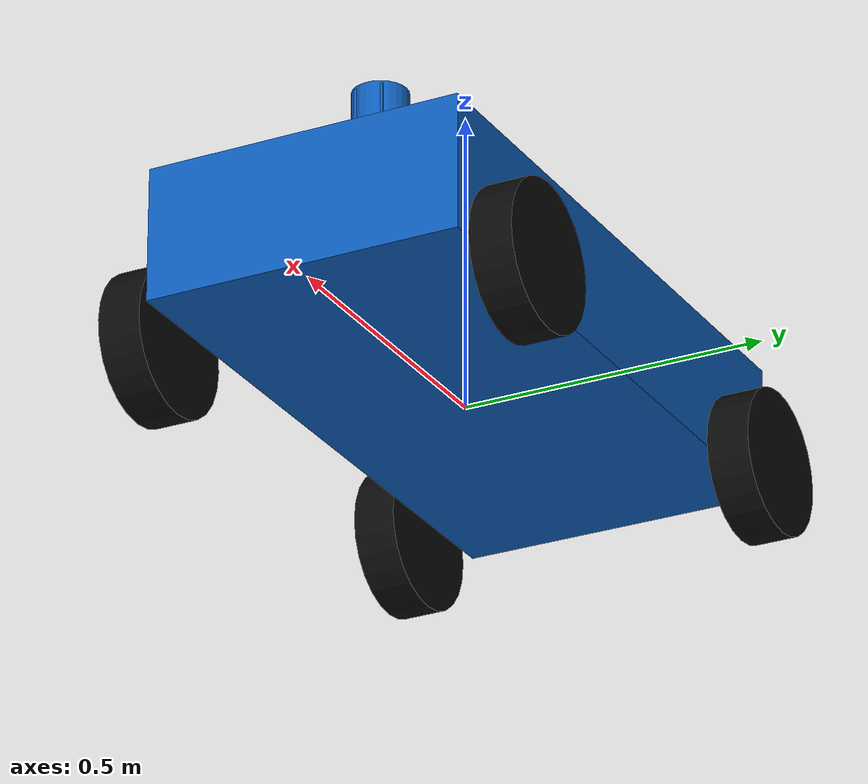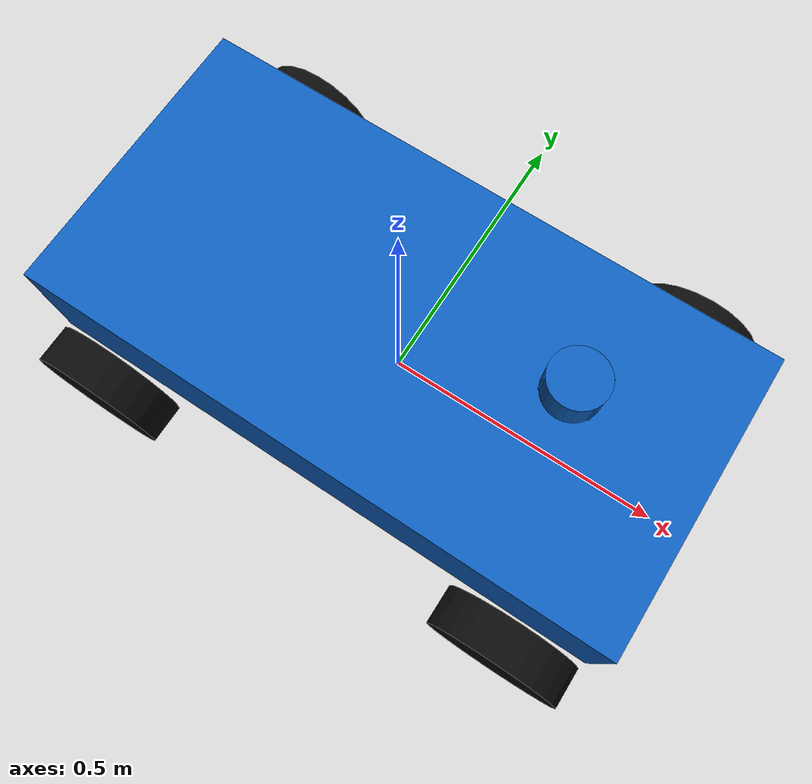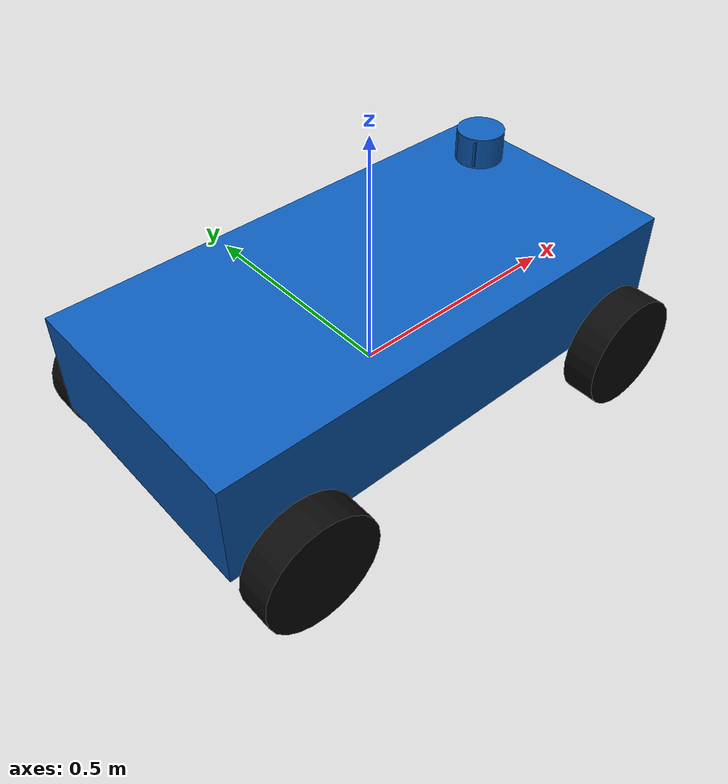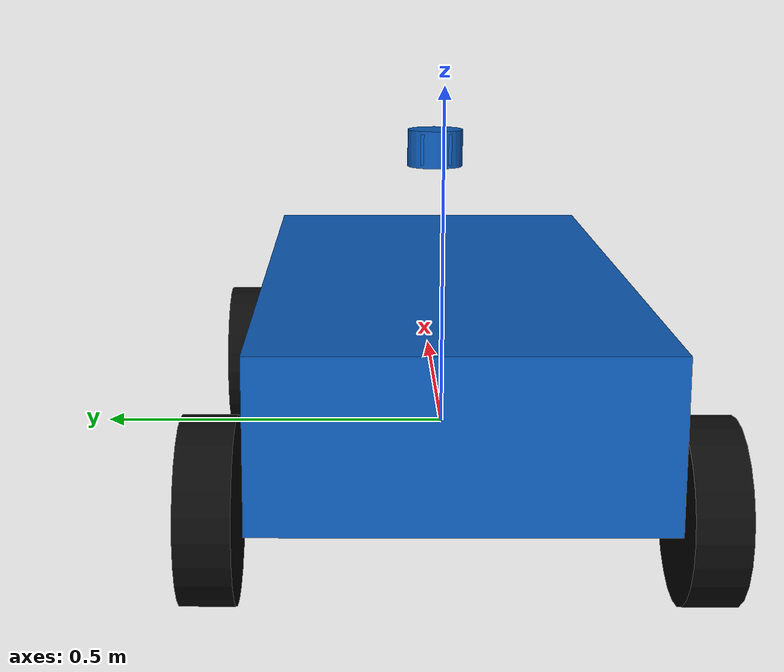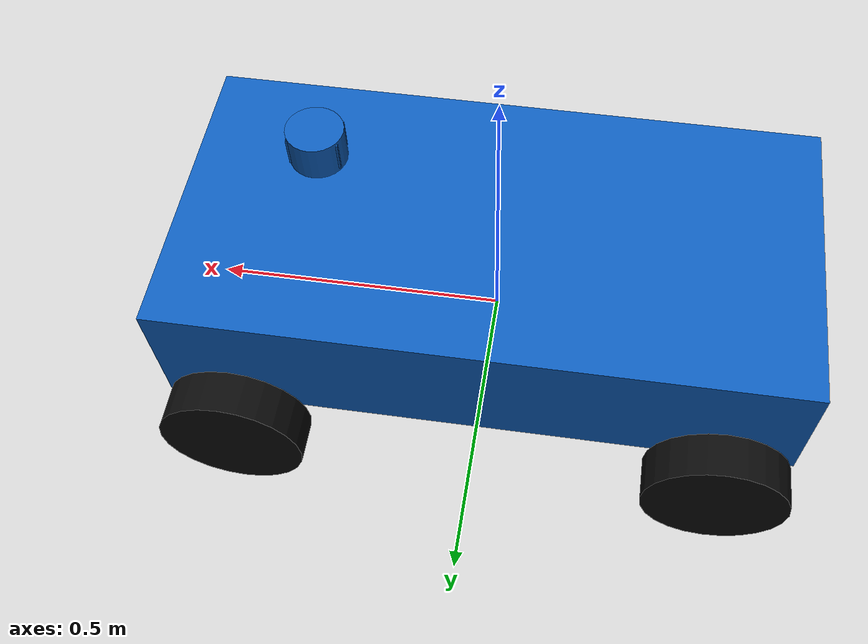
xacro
<?xml version="1.0"?>
<robot xmlns:xacro="http://www.ros.org/wiki/xacro" name="course_ackermann">
  <!-- SI units and REP-103: x forward, y left, z up. SDF supplies dimensions only. -->
  <xacro:arg name="wheel_base" default="0.8"/>
  <xacro:arg name="track_width" default="0.62"/>
  <xacro:arg name="wheel_radius" default="0.12"/>
  <xacro:property name="wheel_base" value="$(arg wheel_base)"/>
  <xacro:property name="track_width" value="$(arg track_width)"/>
  <xacro:property name="wheel_radius" value="$(arg wheel_radius)"/>
  <xacro:property name="body_length" value="1.05"/>
  <xacro:property name="body_width" value="0.52"/>
  <xacro:property name="body_height" value="0.22"/>

  <material name="body_blue"><color rgba="0.05 0.36 0.72 1"/></material>
  <material name="wheel_black"><color rgba="0.04 0.04 0.04 1"/></material>

  <link name="base_link">
    <inertial>
      <origin xyz="0 0 0.12"/>
      <mass value="12.0"/>
      <inertia ixx="0.55" ixy="0" ixz="0" iyy="1.10" iyz="0" izz="1.40"/>
    </inertial>
    <visual>
      <origin xyz="0 0 0.12"/>
      <geometry><box size="${body_length} ${body_width} ${body_height}"/></geometry>
      <material name="body_blue"/>
    </visual>
    <collision>
      <origin xyz="0 0 0.12"/>
      <geometry><box size="${body_length} ${body_width} ${body_height}"/></geometry>
    </collision>
  </link>

  <xacro:macro name="wheel" params="side longitudinal lateral">
    <link name="${side}_wheel_link">
      <inertial>
        <mass value="0.8"/>
        <inertia ixx="0.006" ixy="0" ixz="0" iyy="0.003" iyz="0" izz="0.006"/>
      </inertial>
      <visual>
        <origin rpy="1.57079632679 0 0"/>
        <geometry><cylinder radius="${wheel_radius}" length="0.07"/></geometry>
        <material name="wheel_black"/>
      </visual>
      <collision>
        <origin rpy="1.57079632679 0 0"/>
        <geometry><cylinder radius="${wheel_radius}" length="0.07"/></geometry>
      </collision>
    </link>
    <!-- Fixed for the mandatory static-tree exercise; no joint_states required. -->
    <joint name="${side}_wheel_joint" type="fixed">
      <parent link="base_link"/>
      <child link="${side}_wheel_link"/>
      <origin xyz="${longitudinal * wheel_base / 2} ${lateral * track_width / 2} 0"/>
    </joint>
  </xacro:macro>
  <xacro:wheel side="front_left" longitudinal="1" lateral="1"/>
  <xacro:wheel side="front_right" longitudinal="1" lateral="-1"/>
  <xacro:wheel side="rear_left" longitudinal="-1" lateral="1"/>
  <xacro:wheel side="rear_right" longitudinal="-1" lateral="-1"/>

  <link name="camera_link">
    <inertial><mass value="0.033333"/><inertia ixx="0.000333" ixy="0" ixz="0" iyy="0.000333" iyz="0" izz="0.000333"/></inertial>
    <visual><geometry><box size="0.08 0.05 0.05"/></geometry><material name="body_blue"/></visual>
    <collision><geometry><box size="0.08 0.05 0.05"/></geometry></collision>
  </link>
  <joint name="camera_joint" type="fixed">
    <parent link="base_link"/><child link="camera_link"/>
    <origin xyz="0.28 0 0.38"/>
  </joint>

  <link name="lidar_link">
    <inertial><mass value="0.033333"/><inertia ixx="0.000333" ixy="0" ixz="0" iyy="0.000333" iyz="0" izz="0.000333"/></inertial>
    <visual><geometry><cylinder radius="0.045" length="0.06"/></geometry><material name="body_blue"/></visual>
    <collision><geometry><cylinder radius="0.045" length="0.06"/></geometry></collision>
  </link>
  <joint name="lidar_joint" type="fixed">
    <parent link="base_link"/><child link="lidar_link"/>
    <origin xyz="0.28 0 0.38"/>
  </joint>

  <link name="imu_link">
    <inertial><mass value="0.033334"/><inertia ixx="0.000333" ixy="0" ixz="0" iyy="0.000333" iyz="0" izz="0.000333"/></inertial>
    <visual><geometry><box size="0.04 0.04 0.02"/></geometry><material name="body_blue"/></visual>
    <collision><geometry><box size="0.04 0.04 0.02"/></geometry></collision>
  </link>
  <joint name="imu_joint" type="fixed">
    <parent link="base_link"/><child link="imu_link"/>
    <origin xyz="0.28 0 0.38"/>
  </joint>
</robot>
